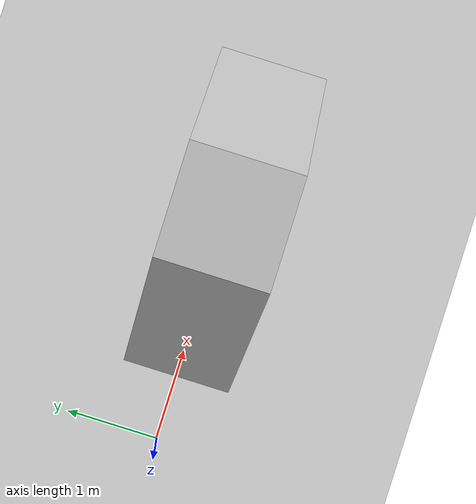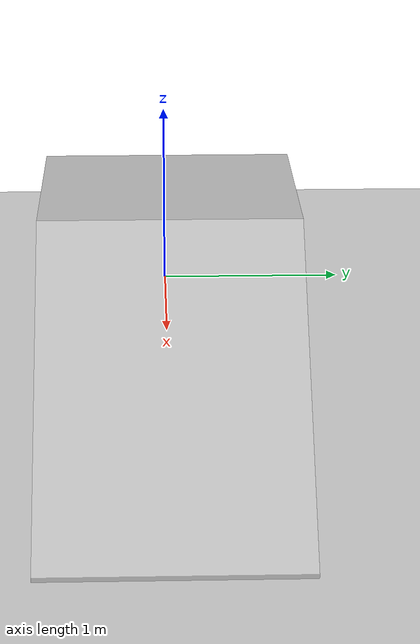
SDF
<?xml version="1.0" ?>
<sdf version="1.4">
  <world name="default">

    <gui>
      <plugin name="keyboard" filename="libKeyboardGUIPlugin.so"/>
    </gui>

    <light name='sun' type='directional'>
      <cast_shadows>1</cast_shadows>
      <pose frame=''>0 0 10 0 -0 0</pose>
      <diffuse>0.8 0.8 0.8 1</diffuse>
      <specular>0.2 0.2 0.2 1</specular>
      <attenuation>
        <range>1000</range>
        <constant>0.9</constant>
        <linear>0.01</linear>
        <quadratic>0.001</quadratic>
      </attenuation>
      <direction>-0.5 0.1 -0.9</direction>
    </light>

    <model name='ground_plane'>
      <static>1</static>
      <link name='link'>
        <collision name='collision'>
          <geometry>
            <plane>
              <normal>0 0 1</normal>
              <size>100 100</size>
            </plane>
          </geometry>
          <surface>
            <friction>
              <ode>
                <mu>100</mu>
                <mu2>50</mu2>
              </ode>
              <torsional>
                <ode/>
              </torsional>
            </friction>
            <contact>
              <ode/>
            </contact>
            <bounce/>
          </surface>
          <max_contacts>10</max_contacts>
        </collision>
        <visual name='visual'>
          <cast_shadows>0</cast_shadows>
          <geometry>
            <plane>
              <normal>0 0 1</normal>
              <size>100 100</size>
            </plane>
          </geometry>
          <material>
            <script>
              <uri>file://media/materials/scripts/gazebo.material</uri>
              <name>Gazebo/Grey</name>
            </script>
          </material>
        </visual>
        <self_collide>0</self_collide>
        <kinematic>0</kinematic>
      </link>
    </model>

    <!-- ramp up -->
    <model name='nist_simple_ramp_120'>
      <static>1</static>
      <link name='nist_simple_ramp_120_link'>
        <pose frame=''>1.3 0 0 0 0 -1.57079</pose>
        <collision name='collision'>
          <geometry>
            <mesh>
              <uri>model://nist_simple_ramp_120/meshes/nist_simple_ramp_120.dae</uri>
              <scale>1 1 1</scale>
            </mesh>
          </geometry>
          <max_contacts>10</max_contacts>
          <surface>
            <contact>
              <ode/>
            </contact>
            <bounce/>
            <friction>
              <torsional>
                <ode/>
              </torsional>
              <ode/>
            </friction>
          </surface>
        </collision>
        <visual name='visual'>
          <geometry>
            <mesh>
              <uri>model://nist_simple_ramp_120/meshes/nist_simple_ramp_120.dae</uri>
              <scale>1 1 1</scale>
            </mesh>
          </geometry>
        </visual>
        <self_collide>0</self_collide>
        <enable_wind>0</enable_wind>
        <kinematic>0</kinematic>
      </link>
    </model>

    <!-- elevated floor -->
    <model name='nist_elevated_floor_120'>
      <static>1</static>
      <link name='nist_elevated_floor_120'>
        <pose frame=''>2.48 0 0 0 0 0</pose>
        <collision name='collision'>
          <geometry>
            <mesh>
              <uri>model://nist_elevated_floor_120/meshes/nist_elevated_floor_120.dae</uri>
              <scale>1 1 1</scale>
            </mesh>
          </geometry>
          <max_contacts>10</max_contacts>
          <surface>
            <contact>
              <ode/>
            </contact>
            <bounce/>
            <friction>
              <torsional>
                <ode/>
              </torsional>
              <ode/>
            </friction>
          </surface>
        </collision>
        <visual name='visual'>
          <geometry>
            <mesh>
              <uri>model://nist_elevated_floor_120/meshes/nist_elevated_floor_120.dae</uri>
              <scale>1 1 1</scale>
            </mesh>
          </geometry>
        </visual>
        <self_collide>0</self_collide>
        <enable_wind>0</enable_wind>
        <kinematic>0</kinematic>
      </link>
    </model>

    <!-- ramp down -->
    <model name='nist_simple_ramp_120_0'>
      <static>1</static>
      <link name='nist_simple_ramp_120_link'>
        <pose frame=''>3.66 0.0 0 0 -0 1.57079</pose>
        <collision name='collision'>
          <geometry>
            <mesh>
              <uri>model://nist_simple_ramp_120/meshes/nist_simple_ramp_120.dae</uri>
              <scale>1 1 1</scale>
            </mesh>
          </geometry>
          <max_contacts>10</max_contacts>
          <surface>
            <contact>
              <ode/>
            </contact>
            <bounce/>
            <friction>
              <torsional>
                <ode/>
              </torsional>
              <ode/>
            </friction>
          </surface>
        </collision>
        <visual name='visual'>
          <geometry>
            <mesh>
              <uri>model://nist_simple_ramp_120/meshes/nist_simple_ramp_120.dae</uri>
              <scale>1 1 1</scale>
            </mesh>
          </geometry>
        </visual>
        <self_collide>0</self_collide>
        <enable_wind>0</enable_wind>
        <kinematic>0</kinematic>
      </link>
    </model>

  </world>
</sdf>
